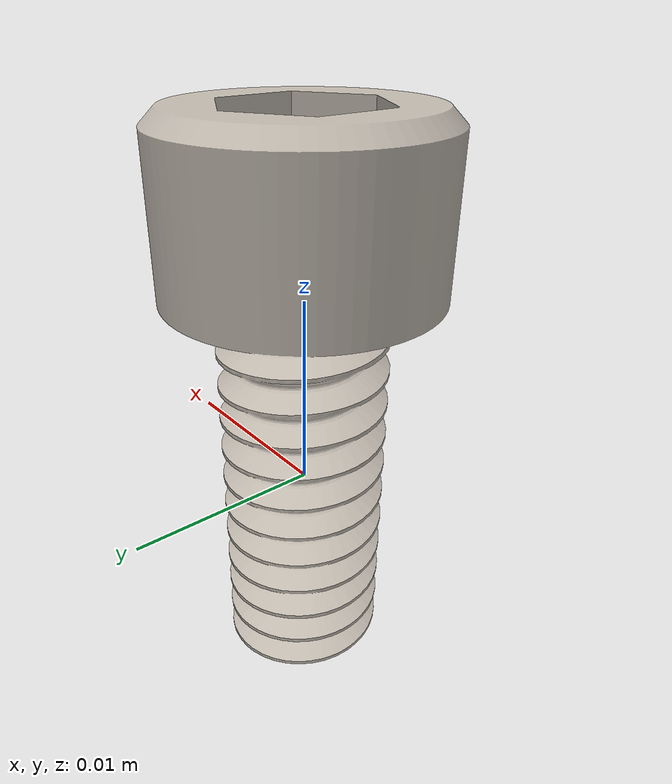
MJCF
<?xml version="1.0" encoding="UTF-8"?>
<mujoco model="sockethead_capscrew_allen">
  <asset>
    <texture type="2d" file="textures/metal.png" name="metal_tex"/>
    <material name="metal_mat" texture="metal_tex" specular="0.9" shininess="0.7" reflectance="0.25"/>
    <mesh name="sockethead_capscrew_allen_mesh" file="meshes/sockethead_capscrew_allen.stl"/>
  </asset>
  <worldbody>
    <body name="sockethead_capscrew_allen" pos="0 0 0">
      <freejoint name="sockethead_capscrew_allen_joint"/>
      <geom name="sockethead_capscrew_allen_visual" type="mesh" mesh="sockethead_capscrew_allen_mesh"
            material="metal_mat" group="1" contype="0" conaffinity="0"/>
      <geom name="sockethead_capscrew_allen_col" type="cylinder" group="3"
            size="0.00687963 0.014892"
            pos="0 0 0.00384378" quat="1 0 0 0"
            mass="0.001" friction="1.0 0.05 0.001" condim="4"/>
    </body>
  </worldbody>
</mujoco>
